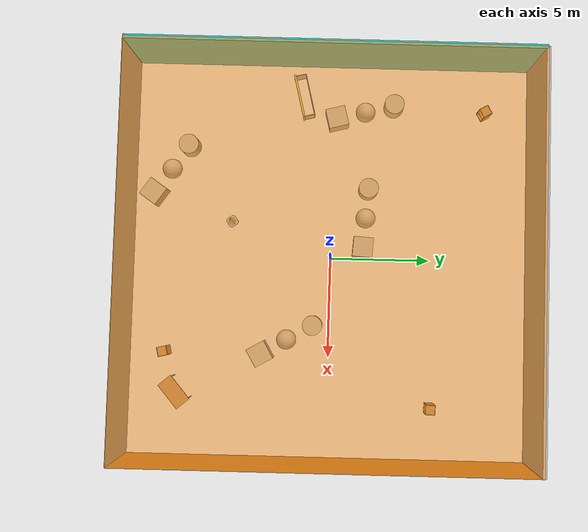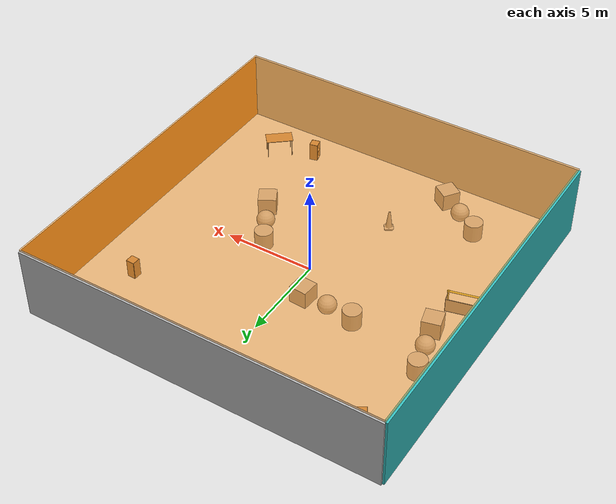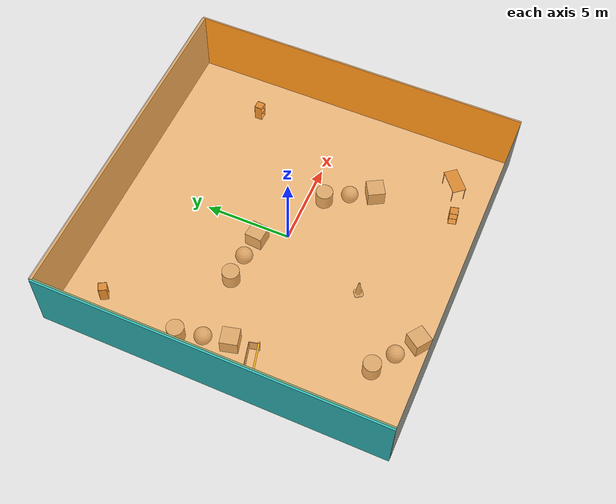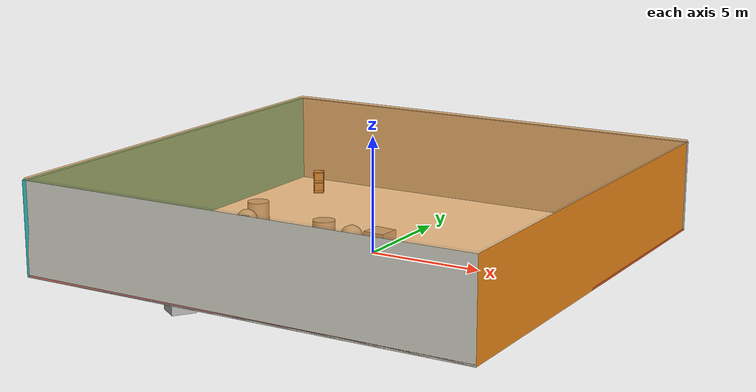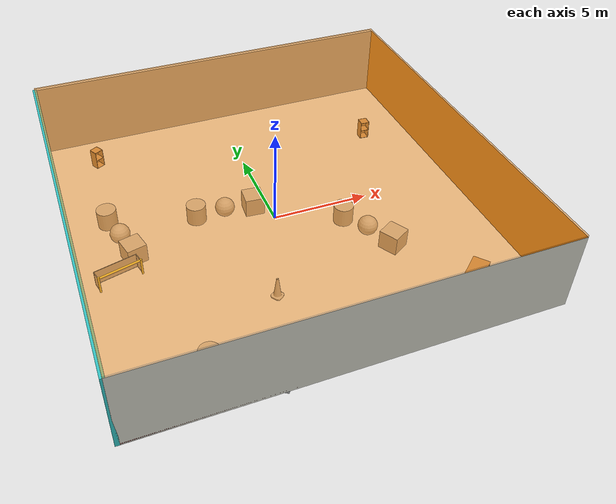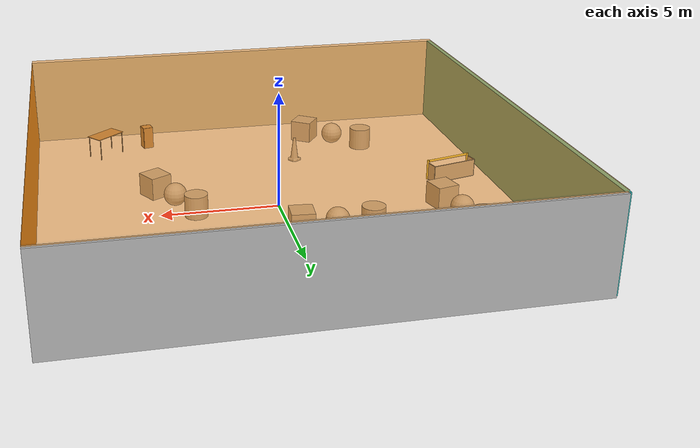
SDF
<sdf version="1.4">
 <world name="default">
  <physics type="ode">
   <max_step_size>0.001</max_step_size>
   <real_time_factor>1</real_time_factor>
   <real_time_update_rate>1000</real_time_update_rate>
   <gravity>0 0 -9.8</gravity>
  </physics>
  <scene><ambient>0.4 0.4 0.4 1</ambient><background>0.7 0.7 0.7 1</background><shadows>1</shadows></scene>
  <model name="Surrounding">
   <static>1</static>
   <link name="Ceiling">
    <collision name="Ceiling_Collision"><geometry><box><size>20 20 0.1</size></box></geometry></collision>
    <visual name="Ceiling_Visual">
     <geometry><box><size>20 20 0.1</size></box></geometry>
     <material>
      <script>
       <uri>file://media/materials/scripts/gazebo.material</uri>
       <name>Gazebo/OrangeTransparent</name>
      </script>
     </material>
    </visual>
    <pose>0 0 4.05 0 0 0</pose>
   </link>
   <link name="Wall_South">
    <collision name="Wall_South_Collision">
     <geometry><box><size>20 0 4</size></box></geometry>
     <pose>0 0 2 0 -0 0</pose>
    </collision>
    <visual name="Wall_South_Visual">
     <pose>0 0 2 0 -0 0</pose>
     <geometry><box><size>20 0 4</size></box></geometry>
     <material>
      <script><uri>file://media/materials/scripts/gazebo.material</uri><name>Gazebo/PaintedWall</name></script>
     </material>
    </visual>
    <velocity_decay><linear>0</linear><angular>0</angular></velocity_decay>
    <pose>0 -10 0 0 -0 0</pose>
   </link>
   <link name="Wall_East">
    <collision name="Wall_21_Collision">
     <geometry><box><size>20 0 4</size></box></geometry>
     <pose>0 0 2 0 -0 0</pose>
    </collision>
    <visual name="Wall_21_Visual">
     <pose>0 0 2 0 -0 0</pose>
     <geometry><box><size>20 0 4</size></box></geometry>
     <material>
      <script><uri>file://media/materials/scripts/gazebo.material</uri><name>Gazebo/Orange</name></script>
     </material>
    </visual>
    <velocity_decay><linear>0</linear><angular>0</angular></velocity_decay>
    <pose>10 0 0 0 -0 1.5708</pose>
   </link>
   <link name="Wall_North">
    <collision name="Wall_22_Collision">
     <geometry><box><size>20 0.2 4</size></box></geometry>
     <pose>0 0 2 0 -0 0</pose>
    </collision>
    <visual name="Wall_22_Visual">
     <pose>0 0 2 0 -0 0</pose>
     <geometry><box><size>20 0.2 4</size></box></geometry>
     <material>
      <script><uri>file://media/materials/scripts/gazebo.material</uri><name>Gazebo/LightOff</name></script>
     </material>
    </visual>
    <velocity_decay><linear>0</linear><angular>0</angular></velocity_decay>
    <pose>0 10 0 0 -0 0</pose>
   </link>
   <link name="Wall_West">
    <collision name="Wall_23_Collision">
     <geometry><box><size>20 0.2 4</size></box></geometry>
     <pose>0 0 2 0 -0 0</pose>
    </collision>
    <visual name="Wall_23_Visual">
     <pose>0 0 2 0 -0 0</pose>
     <geometry><box><size>20 0.2 4</size></box></geometry>
     <material>
      <script><uri>file://media/materials/scripts/gazebo.material</uri><name>Gazebo/TurquoiseGlow</name></script>
     </material>
    </visual>
    <velocity_decay><linear>0</linear><angular>0</angular></velocity_decay>
    <pose>-10 0 0 0 0 -1.5708</pose>
   </link>
   <link name="Ground_link">
    <collision name="collision">
     <pose>0 0 .05 0 -0 0</pose>
     <geometry><box><size>20 20 0.1</size></box></geometry>
    </collision>
    <visual name="visual">
     <pose>0 0 .05 0 -0 0</pose>
     <geometry><box><size>20 20 0.1</size></box></geometry>
     <material>
      <script><uri>file://media/materials/scripts/gazebo.material</uri><name>Gazebo/RedTransparent</name></script>
     </material>
    </visual>
   </link>
   <static>1</static>
  </model>
  <spherical_coordinates>
   <surface_model>EARTH_WGS84</surface_model>
   <latitude_deg>0</latitude_deg>
   <longitude_deg>0</longitude_deg>
   <elevation>0</elevation>
   <heading_deg>0</heading_deg>
  </spherical_coordinates>
  <light name="lightball_0" type="diffuse">
   <diffuse>0.8 0.8 0.8 1</diffuse>
   <specular>0.2 0.2 0.2 1</specular>
   <attenuation>
    <range>100</range>
    <constant>0.7</constant>
    <linear>0.01</linear>
    <quadratic>0.001</quadratic>
   </attenuation>
   <direction>-0.5 0.1 -0.9</direction>
   <pose>6.97206446851 8.10391315609 2.71184587851 0 0 0</pose>
  </light>
  <light name="lightball_1" type="diffuse">
   <diffuse>0.8 0.8 0.8 1</diffuse>
   <specular>0.2 0.2 0.2 1</specular>
   <attenuation>
    <range>100</range>
    <constant>0.7</constant>
    <linear>0.01</linear>
    <quadratic>0.001</quadratic>
   </attenuation>
   <direction>-0.5 0.1 -0.9</direction>
   <pose>-5.17820580673 -9.26105350291 1.78314280725 0 0 0</pose>
  </light>
  <light name="lightball_2" type="diffuse">
   <diffuse>0.8 0.8 0.8 1</diffuse>
   <specular>0.2 0.2 0.2 1</specular>
   <attenuation>
    <range>100</range>
    <constant>0.7</constant>
    <linear>0.01</linear>
    <quadratic>0.001</quadratic>
   </attenuation>
   <direction>-0.5 0.1 -0.9</direction>
   <pose>5.55210298779 -4.03990704949 3.6286922364 0 0 0</pose>
  </light>
  <light name="lightball_3" type="diffuse">
   <diffuse>0.8 0.8 0.8 1</diffuse>
   <specular>0.2 0.2 0.2 1</specular>
   <attenuation>
    <range>100</range>
    <constant>0.7</constant>
    <linear>0.01</linear>
    <quadratic>0.001</quadratic>
   </attenuation>
   <direction>-0.5 0.1 -0.9</direction>
   <pose>7.5402369448 -6.13165494454 2.37121772986 0 0 0</pose>
  </light>
  <light name="lightball_4" type="diffuse">
   <diffuse>0.8 0.8 0.8 1</diffuse>
   <specular>0.2 0.2 0.2 1</specular>
   <attenuation>
    <range>100</range>
    <constant>0.7</constant>
    <linear>0.01</linear>
    <quadratic>0.001</quadratic>
   </attenuation>
   <direction>-0.5 0.1 -0.9</direction>
   <pose>0.322358180436 -2.56805032214 1.42321649726 0 0 0</pose>
  </light>
  <light name="lightball_5" type="diffuse">
   <diffuse>0.8 0.8 0.8 1</diffuse>
   <specular>0.2 0.2 0.2 1</specular>
   <attenuation>
    <range>100</range>
    <constant>0.7</constant>
    <linear>0.01</linear>
    <quadratic>0.001</quadratic>
   </attenuation>
   <direction>-0.5 0.1 -0.9</direction>
   <pose>-1.91001759192 9.59467462662 0.53676117657 0 0 0</pose>
  </light>
  <light name="lightball_6" type="diffuse">
   <diffuse>0.8 0.8 0.8 1</diffuse>
   <specular>0.2 0.2 0.2 1</specular>
   <attenuation>
    <range>100</range>
    <constant>0.7</constant>
    <linear>0.01</linear>
    <quadratic>0.001</quadratic>
   </attenuation>
   <direction>-0.5 0.1 -0.9</direction>
   <pose>-2.35831686602 -4.91327861103 0.952273217433 0 0 0</pose>
  </light>
  <light name="lightball_7" type="diffuse">
   <diffuse>0.8 0.8 0.8 1</diffuse>
   <specular>0.2 0.2 0.2 1</specular>
   <attenuation>
    <range>100</range>
    <constant>0.7</constant>
    <linear>0.01</linear>
    <quadratic>0.001</quadratic>
   </attenuation>
   <direction>-0.5 0.1 -0.9</direction>
   <pose>-7.687185526 8.29264248771 0.634056722483 0 0 0</pose>
  </light>
  <light name="lightball_8" type="diffuse">
   <diffuse>0.8 0.8 0.8 1</diffuse>
   <specular>0.2 0.2 0.2 1</specular>
   <attenuation>
    <range>100</range>
    <constant>0.7</constant>
    <linear>0.01</linear>
    <quadratic>0.001</quadratic>
   </attenuation>
   <direction>-0.5 0.1 -0.9</direction>
   <pose>3.78285642476 -8.61115809364 2.72371126019 0 0 0</pose>
  </light>
  <light name="lightball_9" type="diffuse">
   <diffuse>0.8 0.8 0.8 1</diffuse>
   <specular>0.2 0.2 0.2 1</specular>
   <attenuation>
    <range>100</range>
    <constant>0.7</constant>
    <linear>0.01</linear>
    <quadratic>0.001</quadratic>
   </attenuation>
   <direction>-0.5 0.1 -0.9</direction>
   <pose>-3.01681809404 5.3631049841 1.81082214463 0 0 0</pose>
  </light>
  <light name="lightball_10" type="diffuse">
   <diffuse>0.8 0.8 0.8 1</diffuse>
   <specular>0.2 0.2 0.2 1</specular>
   <attenuation>
    <range>100</range>
    <constant>0.7</constant>
    <linear>0.01</linear>
    <quadratic>0.001</quadratic>
   </attenuation>
   <direction>-0.5 0.1 -0.9</direction>
   <pose>-3.68951846396 2.60534193066 2.33263924128 0 0 0</pose>
  </light>
  <light name="lightball_11" type="diffuse">
   <diffuse>0.8 0.8 0.8 1</diffuse>
   <specular>0.2 0.2 0.2 1</specular>
   <attenuation>
    <range>100</range>
    <constant>0.7</constant>
    <linear>0.01</linear>
    <quadratic>0.001</quadratic>
   </attenuation>
   <direction>-0.5 0.1 -0.9</direction>
   <pose>7.63466327248 -2.40718593297 1.37163730378 0 0 0</pose>
  </light>
  <light name="lightball_12" type="diffuse">
   <diffuse>0.8 0.8 0.8 1</diffuse>
   <specular>0.2 0.2 0.2 1</specular>
   <attenuation>
    <range>100</range>
    <constant>0.7</constant>
    <linear>0.01</linear>
    <quadratic>0.001</quadratic>
   </attenuation>
   <direction>-0.5 0.1 -0.9</direction>
   <pose>3.40391023296 4.67762498714 0.794382403697 0 0 0</pose>
  </light>
  <light name="lightball_13" type="diffuse">
   <diffuse>0.8 0.8 0.8 1</diffuse>
   <specular>0.2 0.2 0.2 1</specular>
   <attenuation>
    <range>100</range>
    <constant>0.7</constant>
    <linear>0.01</linear>
    <quadratic>0.001</quadratic>
   </attenuation>
   <direction>-0.5 0.1 -0.9</direction>
   <pose>8.8671536653 3.73080193371 2.46849571301 0 0 0</pose>
  </light>
  <include>
   <uri>model://robocup_3Dsim_goal</uri>
   <pose>-8.15479495051 -1.76281400066 0 0 0 1.80910152489</pose>
  </include>
  <include>
   <uri>model://textured_shapes</uri>
   <pose>-7.58758585706 1.62023495366 0 0 0 0.247342364846</pose>
  </include>
  <include><uri>model://cabinet</uri><pose>-7.56499910825 7.63314236667 0 0 0 2.08117220693</pose></include>
  <include>
   <uri>model://textured_shapes</uri>
   <pose>-4.41924220564 -8.20748403978 0 0 0 0.957345376609</pose>
  </include>
  <include>
   <uri>model://construction_cone</uri>
   <pose>-1.78916567527 -5.04319977907 0 0 0 0.606704680318</pose>
  </include>
  <include>
   <uri>model://textured_shapes</uri>
   <pose>-2.11450016512 1.74313631783 0 0 0 1.49603134357</pose>
  </include>
  <include><uri>model://cabinet</uri><pose>4.83573047095 -8.19940366483 0 0 0 0.235328030708</pose></include>
  <include>
   <uri>model://textured_shapes</uri>
   <pose>4.15194515649 -2.13283531753 0 0 0 0.517735227633</pose>
  </include>
  <include><uri>model://table</uri><pose>6.83164619585 -7.5558203169 0 0 0 0.698809966735</pose></include>
  <include><uri>model://cabinet</uri><pose>7.38426584284 5.11000065159 0 0 0 1.52966264206</pose></include>
 </world>
</sdf>

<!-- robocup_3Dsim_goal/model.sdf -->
<sdf version="1.5">
  <model name="robocup_3d_goal">
    <static>true</static>
    <link name="left_post">
      <pose>0 1.05 0.45 0 0 0</pose>
      <collision name="collision">
        <geometry>
          <cylinder>
            <radius>0.05</radius>
            <length>0.9</length>
          </cylinder>
        </geometry>
      </collision>
      <visual name="visual">
        <geometry>
          <cylinder>
            <radius>0.05</radius>
            <length>0.9</length>
          </cylinder>
        </geometry>
        <material>
          <script>
            <uri>file://media/materials/scripts/gazebo.material</uri>
            <name>Gazebo/ZincYellow</name>
          </script>
        </material>
      </visual>
    </link>
    <link name="left_support_horiz_lower">
      <pose>0.30 1.05 0.01 0 0 0</pose>
      <collision name="collision">
        <geometry>
          <box>
            <size>0.50 0.02 0.02</size>
          </box>
        </geometry>
      </collision>
      <visual name="visual">
        <geometry>
          <box>
            <size>0.50 0.02 0.02</size>
          </box>
        </geometry>
        <material>
          <script>
            <uri>file://media/materials/scripts/gazebo.material</uri>
            <name>Gazebo/White</name>
          </script>
        </material>
      </visual>
    </link>
    <link name="left_support_horiz_upper">
      <pose>0.30 1.05 0.79 0 0 0</pose>
      <collision name="collision">
        <geometry>
          <box>
            <size>0.50 0.02 0.02</size>
          </box>
        </geometry>
      </collision>
      <visual name="visual">
        <geometry>
          <box>
            <size>0.50 0.02 0.02</size>
          </box>
        </geometry>
        <material>
          <script>
            <uri>file://media/materials/scripts/gazebo.material</uri>
            <name>Gazebo/White</name>
          </script>
        </material>
      </visual>
    </link>
    <link name="left_support_vertical">
      <pose>0.56 1.05 0.4 0 1.5708 0</pose>
      <collision name="collision">
        <geometry>
          <box>
            <size>0.80 0.02 0.02</size>
          </box>
        </geometry>
      </collision>
      <visual name="visual">
        <geometry>
          <box>
            <size>0.80 0.02 0.02</size>
          </box>
        </geometry>
        <material>
          <script>
            <uri>file://media/materials/scripts/gazebo.material</uri>
            <name>Gazebo/White</name>
          </script>
        </material>
      </visual>
    </link>
    <link name="right_support_horiz_lower">
      <pose>0.30 -1.05 0.01 0 0 0</pose>
      <collision name="collision">
        <geometry>
          <box>
            <size>0.50 0.02 0.02</size>
          </box>
        </geometry>
      </collision>
      <visual name="visual">
        <geometry>
          <box>
            <size>0.50 0.02 0.02</size>
          </box>
        </geometry>
        <material>
          <script>
            <uri>file://media/materials/scripts/gazebo.material</uri>
            <name>Gazebo/White</name>
          </script>
        </material>
      </visual>
    </link>
    <link name="right_support_horiz_upper">
      <pose>0.30 -1.05 0.79 0 0 0</pose>
      <collision name="collision">
        <geometry>
          <box>
            <size>0.50 0.02 0.02</size>
          </box>
        </geometry>
      </collision>
      <visual name="visual">
        <geometry>
          <box>
            <size>0.50 0.02 0.02</size>
          </box>
        </geometry>
        <material>
          <script>
            <uri>file://media/materials/scripts/gazebo.material</uri>
            <name>Gazebo/White</name>
          </script>
        </material>
      </visual>
    </link>
    <link name="right_support_vertical">
      <pose>0.56 -1.05 0.4 0 1.5708 0</pose>
      <collision name="collision">
        <geometry>
          <box>
            <size>0.80 0.02 0.02</size>
          </box>
        </geometry>
      </collision>
      <visual name="visual">
        <geometry>
          <box>
            <size>0.80 0.02 0.02</size>
          </box>
        </geometry>
        <material>
          <script>
            <uri>file://media/materials/scripts/gazebo.material</uri>
            <name>Gazebo/White</name>
          </script>
        </material>
      </visual>
    </link>
    <link name="center_support_horiz_lower">
      <pose>0.56 0 0.01 0 1.5708 0</pose>
      <collision name="collision">
        <geometry>
          <box>
            <size>0.02 2.08 0.02</size>
          </box>
        </geometry>
      </collision>
      <visual name="visual">
        <geometry>
          <box>
            <size>0.02 2.08 0.02</size>
          </box>
        </geometry>
        <material>
          <script>
            <uri>file://media/materials/scripts/gazebo.material</uri>
            <name>Gazebo/White</name>
          </script>
        </material>
      </visual>
    </link>
    <link name="center_support_horiz_upper">
      <pose>0.56 0 0.79 0 1.5708 0</pose>
      <collision name="collision">
        <geometry>
          <box>
            <size>0.02 2.08 0.02</size>
          </box>
        </geometry>
      </collision>
      <visual name="visual">
        <geometry>
          <box>
            <size>0.02 2.08 0.02</size>
          </box>
        </geometry>
        <material>
          <script>
            <uri>file://media/materials/scripts/gazebo.material</uri>
            <name>Gazebo/White</name>
          </script>
        </material>
      </visual>
    </link>
    <link name="right_post">
      <pose>0 -1.05 0.45 0 0 0</pose>
      <collision name="collision">
        <geometry>
          <cylinder>
            <radius>0.05</radius>
            <length>0.9</length>
          </cylinder>
        </geometry>
      </collision>
      <visual name="visual">
        <geometry>
          <cylinder>
            <radius>0.05</radius>
            <length>0.9</length>
          </cylinder>
        </geometry>
        <material>
          <script>
            <uri>file://media/materials/scripts/gazebo.material</uri>
            <name>Gazebo/ZincYellow</name>
          </script>
        </material>
      </visual>
    </link>
    <link name="crossbar">
      <pose>0 0 0.85 1.57 1.57 0</pose>
      <collision name="collision">
        <geometry>
          <cylinder>
            <radius>0.05</radius>
            <length>2.0</length>
          </cylinder>
        </geometry>
      </collision>
      <visual name="visual">
        <geometry>
          <cylinder>
            <radius>0.05</radius>
            <length>2.0</length>
          </cylinder>
        </geometry>
        <material>
          <script>
            <uri>file://media/materials/scripts/gazebo.material</uri>
            <name>Gazebo/ZincYellow</name>
          </script>
        </material>
      </visual>
    </link>
    <link name="center_net">
      <pose>0.56 0 0.40 0 0 0</pose>
      <collision name="collision">
        <geometry>
          <box>
            <size>0.01 2.1 0.80</size>
          </box>
        </geometry>
      </collision>
      <visual name="visual">
        <geometry>
          <box>
            <size>0.01 2.1 0.80</size>
          </box>
        </geometry>
        <material>
          <script>
            <uri>model://../model_source/models/robocup09_spl_field/materials/scripts/</uri>
            <uri>model://../model_source/models/robocup09_spl_field/materials/textures/</uri>
            <name>RoboCup/Net</name>
          </script>
        </material>
      </visual>
    </link>
    <link name="left_net">
      <pose>0.30 1.05 0.40 0 0 0</pose>
      <collision name="collision">
        <geometry>
          <box>
            <size>0.50 0.01 0.76</size>
          </box>
        </geometry>
      </collision>
      <visual name="visual">
        <geometry>
          <box>
            <size>0.50 0.01 0.76</size>
          </box>
        </geometry>
        <material>
          <script>
            <uri>model://../model_source/models/robocup09_spl_field/materials/scripts/</uri>
            <uri>model://../model_source/models/robocup09_spl_field/materials/textures/</uri>
            <name>RoboCup/Net</name>
          </script>
        </material>
      </visual>
    </link>
    <link name="right_net">
      <pose>0.30 -1.05 0.40 0 0 0</pose>
      <collision name="collision">
        <geometry>
          <box>
            <size>0.50 0.01 0.76</size>
          </box>
        </geometry>
      </collision>
      <visual name="visual">
        <geometry>
          <box>
            <size>0.50 0.01 0.76</size>
          </box>
        </geometry>
        <material>
          <script>
            <uri>model://../model_source/models/robocup09_spl_field/materials/scripts/</uri>
            <uri>model://../model_source/models/robocup09_spl_field/materials/textures/</uri>
            <name>RoboCup/Net</name>
          </script>
        </material>
      </visual>
    </link>
  </model>
</sdf>

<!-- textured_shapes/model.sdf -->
<sdf version="1.6">
  <model name="textured_shapes">
    <pose>0 0 0.5 0 0 0</pose>
    <link name="box">
      <pose>0 -1.5 0 0 0 0</pose>
      <collision name="collision">
        <geometry>
          <box>
            <size>1 1 1</size>
          </box>
        </geometry>
      </collision>
      <visual name="visual">
        <geometry>
          <box>
            <size>1 1 1</size>
          </box>
        </geometry>
        <material>
          <script>
            <uri>model://../model_source/models/textured_shapes/materials/scripts</uri>
            <uri>model://../model_source/models/textured_shapes/materials/textures</uri>
            <name>TexturedShape/Squares</name>
          </script>
        </material>
      </visual>
    </link>
    <link name="sphere">
      <collision name="collision">
        <geometry>
          <sphere>
            <radius>0.5</radius>
          </sphere>
        </geometry>
      </collision>
      <visual name="visual">
        <geometry>
          <sphere>
            <radius>0.5</radius>
          </sphere>
        </geometry>
        <material>
          <script>
            <uri>model://../model_source/models/textured_shapes/materials/scripts</uri>
            <uri>model://../model_source/models/textured_shapes/materials/textures</uri>
            <name>TexturedShape/Squares</name>
          </script>
        </material>
      </visual>
    </link>
    <link name="cylinder">
      <pose>0 1.5 0 0 0 0</pose>
      <collision name="collision">
        <geometry>
          <cylinder>
            <radius>0.5</radius>
            <length>1</length>
          </cylinder>
        </geometry>
      </collision>
      <visual name="visual">
        <geometry>
          <cylinder>
            <radius>0.5</radius>
            <length>1</length>
          </cylinder>
        </geometry>
        <material>
          <script>
            <uri>model://../model_source/models/textured_shapes/materials/scripts</uri>
            <uri>model://../model_source/models/textured_shapes/materials/textures</uri>
            <name>TexturedShape/Squares</name>
          </script>
        </material>
      </visual>
    </link>
  </model>
</sdf>

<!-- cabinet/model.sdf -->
<sdf version="1.5">
  <model name="cabinet">
    <static>true</static>
    <link name="cabinet_bottom_plate">
      <inertial>
        <pose>0 0 -1 0 0 0</pose>
        <inertia>
          <ixx>2.050000</ixx>
          <ixy>0</ixy>
          <ixz>0</ixz>
          <iyy>2.050000</iyy>
          <iyz>0</iyz>
          <izz>2.050000</izz>
        </inertia>
        <mass>25.000000</mass>
      </inertial>
      <collision name="cabinet_bottom_plate_geom">
        <pose>0 0 0.010000 0 0 0</pose>
        <geometry>
          <box>
            <size>0.450000 0.450000 0.020000</size>
          </box>
        </geometry>
      </collision>
      <visual name="cabinet_bottom_plate_geom_visual">
        <pose>0 0 0.010000 0 0 0</pose>
        <geometry>
          <box>
            <size>0.450000 0.450000 0.020000</size>
          </box>
        </geometry>
        <material>
          <script>
            <uri>model://media/materials/scripts/gazebo.material</uri>
            <name>Gazebo/Wood</name>
          </script>
        </material>
      </visual>
      <collision name="cabinet_bottom_plate_geom_cabinet_back_plate">
        <pose>0.235000 0 0.510000 0 0 0</pose>
        <geometry>
          <box>
            <size>0.020000 0.450000 1.020000</size>
          </box>
        </geometry>
      </collision>
      <visual name="cabinet_bottom_plate_geom_cabinet_back_plate_visual">
        <pose>0.235000 0 0.510000 0 0 0</pose>
        <geometry>
          <box>
            <size>0.020000 0.450000 1.020000</size>
          </box>
        </geometry>
        <material>
          <script>
            <uri>model://media/materials/scripts/gazebo.material</uri>
            <name>Gazebo/Wood</name>
          </script>
        </material>
      </visual>
      <collision name="cabinet_bottom_plate_geom_cabinet_left_plate">
        <pose>0 0.235000 0.510000 0 0 0</pose>
        <geometry>
          <box>
            <size>0.450000 0.020000 1.020000</size>
          </box>
        </geometry>
      </collision>
      <visual name="cabinet_bottom_plate_geom_cabinet_left_plate_visual">
        <pose>0 0.235000 0.510000 0 0 0</pose>
        <geometry>
          <box>
            <size>0.450000 0.020000 1.020000</size>
          </box>
        </geometry>
        <material>
          <script>
            <uri>model://media/materials/scripts/gazebo.material</uri>
            <name>Gazebo/Wood</name>
          </script>
        </material>
      </visual>
      <collision name="cabinet_bottom_plate_geom_cabinet_middle_plate">
        <pose>0 0 0.510000 0 0 0</pose>
        <geometry>
          <box>
            <size>0.450000 0.450000 0.020000</size>
          </box>
        </geometry>
      </collision>
      <visual name="cabinet_bottom_plate_geom_cabinet_middle_plate_visual">
        <pose>0 0 0.510000 0 0 0</pose>
        <geometry>
          <box>
            <size>0.450000 0.450000 0.020000</size>
          </box>
        </geometry>
        <material>
          <script>
            <uri>model://media/materials/scripts/gazebo.material</uri>
            <name>Gazebo/Wood</name>
          </script>
        </material>
      </visual>
      <collision name="cabinet_bottom_plate_geom_cabinet_right_plate">
        <pose>0 -0.235000 0.510000 0 0 0</pose>
        <geometry>
          <box>
            <size>0.450000 0.020000 1.020000</size>
          </box>
        </geometry>
      </collision>
      <visual name="cabinet_bottom_plate_geom_cabinet_right_plate_visual">
        <pose>0 -0.235000 0.510000 0 0 0</pose>
        <geometry>
          <box>
            <size>0.450000 0.020000 1.020000</size>
          </box>
        </geometry>
        <material>
          <script>
            <uri>model://media/materials/scripts/gazebo.material</uri>
            <name>Gazebo/Wood</name>
          </script>
        </material>
      </visual>
      <collision name="cabinet_bottom_plate_geom_cabinet_top_plate">
        <pose>0 0 1.010000 0 0 0</pose>
        <geometry>
          <box>
            <size>0.450000 0.450000 0.020000</size>
          </box>
        </geometry>
      </collision>
      <visual name="cabinet_bottom_plate_geom_cabinet_top_plate_visual">
        <pose>0 0 1.010000 0 0 0</pose>
        <geometry>
          <box>
            <size>0.450000 0.450000 0.020000</size>
          </box>
        </geometry>
        <material>
          <script>
            <uri>model://media/materials/scripts/gazebo.material</uri>
            <name>Gazebo/Wood</name>
          </script>
        </material>
      </visual>
    </link>
  </model>
</sdf>

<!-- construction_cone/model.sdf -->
<sdf version="1.5">
  <model name="Construction Cone">
    <link name="link">
      <collision name="collision">
        <geometry>
          <mesh>
            <scale>10 10 10</scale>
            <uri>file://isr-testbed/construction_cone/meshes/construction_cone.dae</uri>
          </mesh>
        </geometry>
      </collision>
      <visual name="visual">
        <geometry>
          <mesh>
            <scale>10 10 10</scale>
            <uri>file://isr-testbed/construction_cone/meshes/construction_cone.dae</uri>
          </mesh>
        </geometry>
      </visual>
    </link>
  </model>
</sdf>

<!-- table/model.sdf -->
<sdf version="1.5">
  <model name="table">
    <static>true</static>
    <link name="link">
      <collision name="surface">
        <pose>0 0 1.0 0 0 0</pose>
        <geometry>
          <box>
            <size>1.5 0.8 0.03</size>
          </box>
        </geometry>
        <surface>
          <friction>
            <ode>
              <mu>0.6</mu>
              <mu2>0.6</mu2>
            </ode>
          </friction>
        </surface>
      </collision>
      <visual name="visual1">
        <pose>0 0 1.0 0 0 0</pose>
        <geometry>
          <box>
            <size>1.5 0.8 0.03</size>
          </box>
        </geometry>
        <material>
          <script>
            <uri>model://media/materials/scripts/gazebo.material</uri>
            <name>Gazebo/Wood</name>
          </script>
        </material>
      </visual>
      <collision name="front_left_leg">
        <pose>0.68 0.38 0.5 0 0 0</pose>
        <geometry>
          <cylinder>
            <radius>0.02</radius>
            <length>1.0</length>
          </cylinder>
        </geometry>
      </collision>
      <visual name="front_left_leg">
        <pose>0.68 0.38 0.5 0 0 0</pose>
        <geometry>
          <cylinder>
            <radius>0.02</radius>
            <length>1.0</length>
          </cylinder>
        </geometry>
        <material>
          <script>
            <uri>model://media/materials/scripts/gazebo.material</uri>
            <name>Gazebo/Grey</name>
          </script>
        </material>
      </visual>
      <collision name="front_right_leg">
        <pose>0.68 -0.38 0.5 0 0 0</pose>
        <geometry>
          <cylinder>
            <radius>0.02</radius>
            <length>1.0</length>
          </cylinder>
        </geometry>
      </collision>
      <visual name="front_right_leg">
        <pose>0.68 -0.38 0.5 0 0 0</pose>
        <geometry>
          <cylinder>
            <radius>0.02</radius>
            <length>1.0</length>
          </cylinder>
        </geometry>
        <material>
          <script>
            <uri>model://media/materials/scripts/gazebo.material</uri>
            <name>Gazebo/Grey</name>
          </script>
        </material>
      </visual>
      <collision name="back_right_leg">
        <pose>-0.68 -0.38 0.5 0 0 0</pose>
        <geometry>
          <cylinder>
            <radius>0.02</radius>
            <length>1.0</length>
          </cylinder>
        </geometry>
      </collision>
      <visual name="back_right_leg">
        <pose>-0.68 -0.38 0.5 0 0 0</pose>
        <geometry>
          <cylinder>
            <radius>0.02</radius>
            <length>1.0</length>
          </cylinder>
        </geometry>
        <material>
          <script>
            <uri>model://media/materials/scripts/gazebo.material</uri>
            <name>Gazebo/Grey</name>
          </script>
        </material>
      </visual>
      <collision name="back_left_leg">
        <pose>-0.68 0.38 0.5 0 0 0</pose>
        <geometry>
          <cylinder>
            <radius>0.02</radius>
            <length>1.0</length>
          </cylinder>
        </geometry>
      </collision>
      <visual name="back_left_leg">
        <pose>-0.68 0.38 0.5 0 0 0</pose>
        <geometry>
          <cylinder>
            <radius>0.02</radius>
            <length>1.0</length>
          </cylinder>
        </geometry>
        <material>
          <script>
            <uri>model://media/materials/scripts/gazebo.material</uri>
            <name>Gazebo/Grey</name>
          </script>
        </material>
      </visual>
    </link>
  </model>
</sdf>
